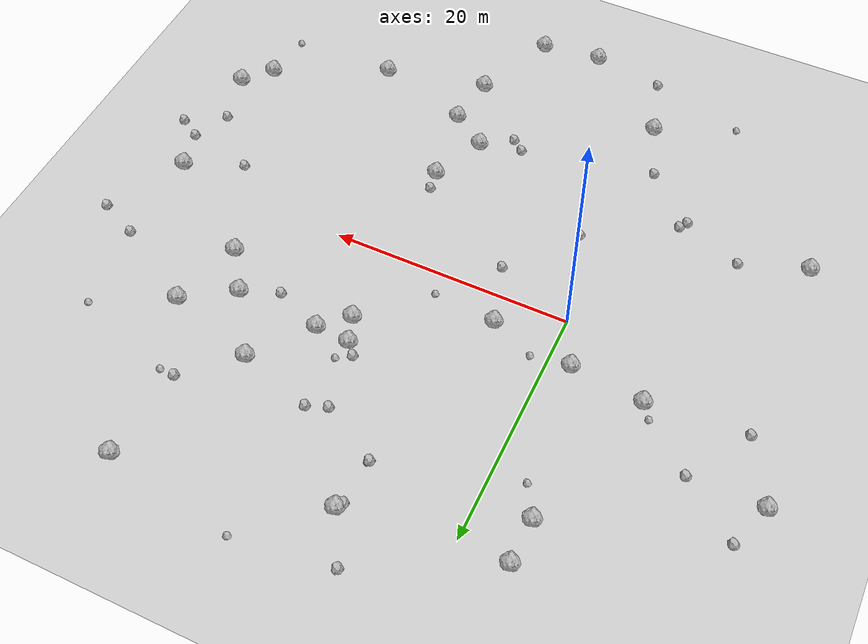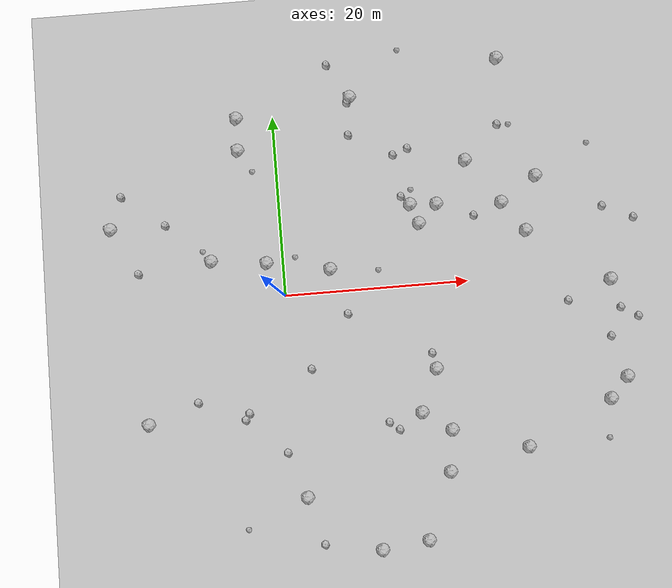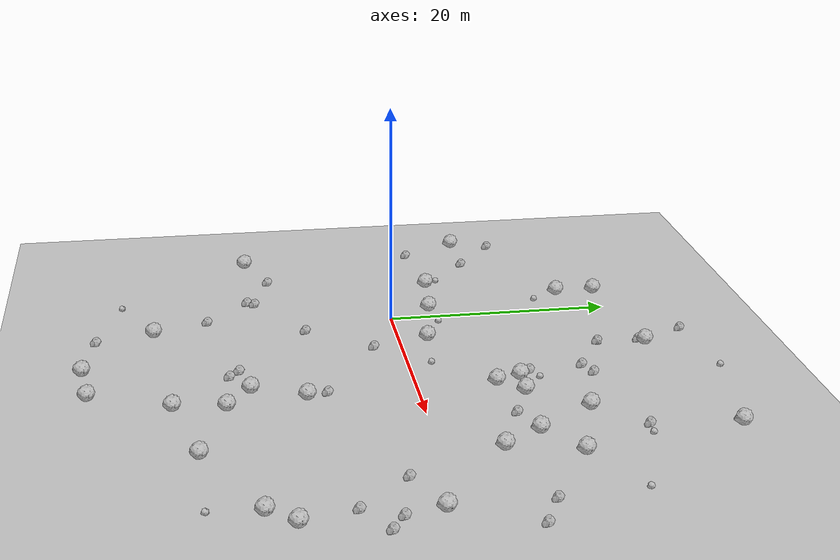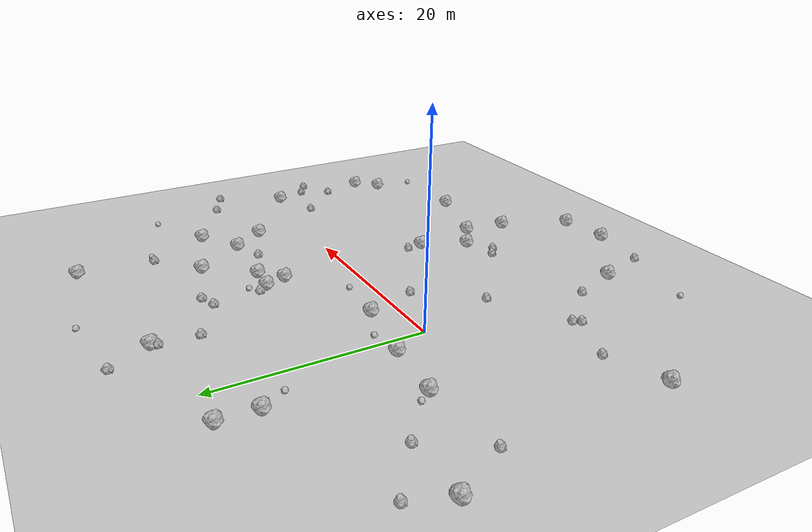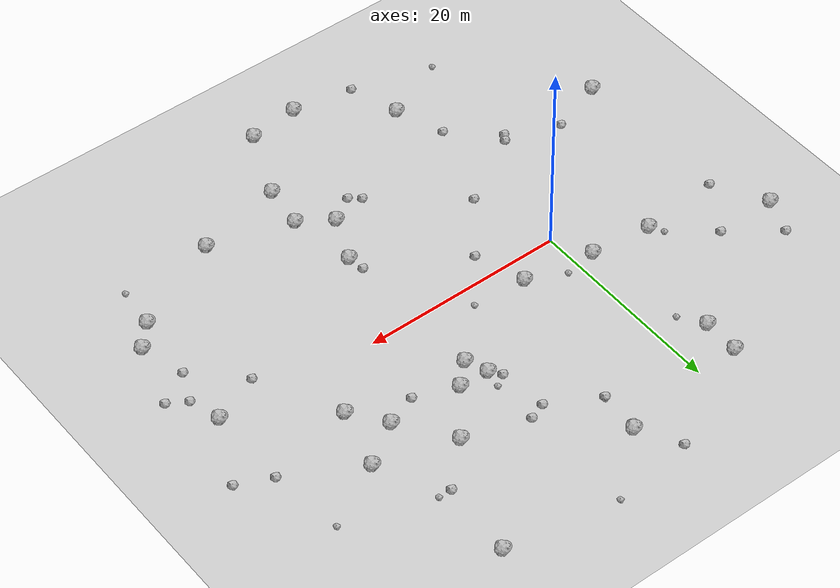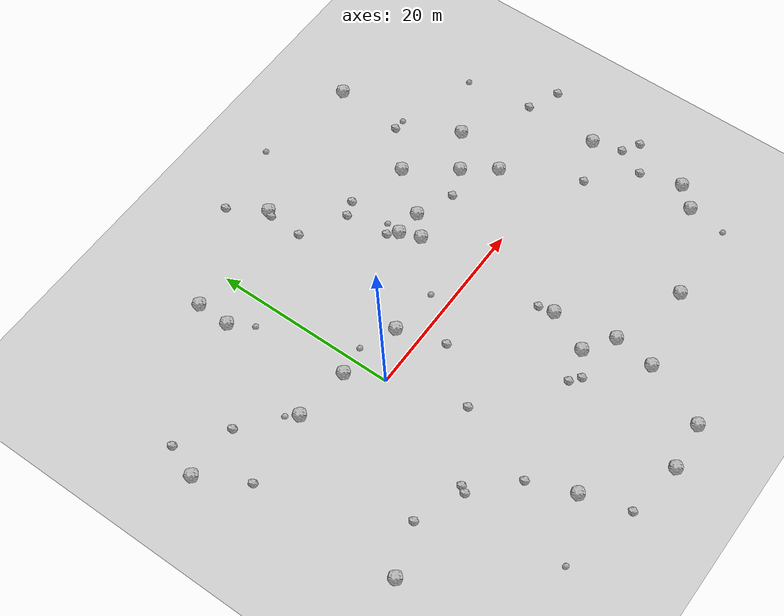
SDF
<sdf version="1.6">
 <world name="default">
  <include><uri>model://custom_ground</uri></include>
  <include><uri>model://sun</uri></include>
  <model name="rock1_0_0">
   <include><uri>model://rock1</uri><pose>24.398046547388958 8.331102305955568 0.5 0 0 0</pose></include>
  </model>
  <model name="rock1_0_1">
   <include><uri>model://rock1</uri><pose>34.09810841004603 -13.936259148995287 0.5 0 0 0</pose></include>
  </model>
  <model name="rock1_0_2">
   <include><uri>model://rock1</uri><pose>15.198357829529435 6.747500550757017 0.5 0 0 0</pose></include>
  </model>
  <model name="rock1_0_3">
   <include><uri>model://rock1</uri><pose>-15.56095035758571 -12.66501505706362 0.5 0 0 0</pose></include>
  </model>
  <model name="rock1_0_4">
   <include><uri>model://rock1</uri><pose>25.425156211855622 24.583975993850906 0.5 0 0 0</pose></include>
  </model>
  <model name="rock1_0_5">
   <include><uri>model://rock1</uri><pose>36.107950517978445 -11.725876800390687 0.5 0 0 0</pose></include>
  </model>
  <model name="rock1_0_6">
   <include><uri>model://rock1</uri><pose>8.274360229697567 -27.73855662255845 0.5 0 0 0</pose></include>
  </model>
  <model name="rock1_0_7">
   <include><uri>model://rock1</uri><pose>-4.032806701916421 16.494015629699007 0.5 0 0 0</pose></include>
  </model>
  <model name="rock1_0_8">
   <include><uri>model://rock1</uri><pose>13.274452738488172 -27.146397997913994 0.5 0 0 0</pose></include>
  </model>
  <model name="rock1_0_9">
   <include><uri>model://rock1</uri><pose>35.446819270651226 -1.0865948712470548 0.5 0 0 0</pose></include>
  </model>
  <model name="rock1_0_10">
   <include><uri>model://rock1</uri><pose>26.778924924858977 5.0052008827340515 0.5 0 0 0</pose></include>
  </model>
  <model name="rock1_0_11">
   <include><uri>model://rock1</uri><pose>24.802799261099857 -18.29904144895759 0.5 0 0 0</pose></include>
  </model>
  <model name="rock1_0_12">
   <include><uri>model://rock1</uri><pose>-18.514312107212657 8.81685401557688 0.5 0 0 0</pose></include>
  </model>
  <model name="rock1_0_13">
   <include><uri>model://rock1</uri><pose>8.750869696426566 21.498424355484694 0.5 0 0 0</pose></include>
  </model>
  <model name="rock1_0_14">
   <include><uri>model://rock1</uri><pose>20.867704677126206 13.332006006602477 0.5 0 0 0</pose></include>
  </model>
  <model name="rock1_0_15">
   <include><uri>model://rock1</uri><pose>5.114196946024528 2.52552981307619 0.5 0 0 0</pose></include>
  </model>
  <model name="rock1_0_16">
   <include><uri>model://rock1</uri><pose>15.684478192428422 -9.19805900003714 0.5 0 0 0</pose></include>
  </model>
  <model name="rock1_0_17">
   <include><uri>model://rock1</uri><pose>28.410638610979298 10.97447269910247 0.5 0 0 0</pose></include>
  </model>
  <model name="rock1_0_18">
   <include><uri>model://rock1</uri><pose>-3.945079876574912 20.117027902949445 0.5 0 0 0</pose></include>
  </model>
  <model name="rock1_0_19">
   <include><uri>model://rock1</uri><pose>16.776309272322564 -15.839045252920945 0.5 0 0 0</pose></include>
  </model>
  <model name="rock1_0_20">
   <include><uri>model://rock1</uri><pose>-1.7516750062323752 3.7523604697794752 0.5 0 0 0</pose></include>
  </model>
  <model name="rock1_0_21">
   <include><uri>model://rock1</uri><pose>13.721501846775531 -13.741701766387784 0.5 0 0 0</pose></include>
  </model>
  <model name="rock1_0_22">
   <include><uri>model://rock1</uri><pose>-7.761213293122127 4.4262627833510635 0.5 0 0 0</pose></include>
  </model>
  <model name="rock1_0_23">
   <include><uri>model://rock1</uri><pose>17.278436342714038 8.74608618900924 0.5 0 0 0</pose></include>
  </model>
  <model name="rock1_0_24">
   <include><uri>model://rock1</uri><pose>14.395165227214406 8.926736808135793 0.5 0 0 0</pose></include>
  </model>
  <model name="rock1_0_25">
   <include><uri>model://rock1</uri><pose>16.19458807552317 -20.22665982738291 0.5 0 0 0</pose></include>
  </model>
  <model name="rock1_0_26">
   <include><uri>model://rock1</uri><pose>0.7971871965159281 -21.665091179481884 0.5 0 0 0</pose></include>
  </model>
  <model name="rock2_0_0">
   <include><uri>model://rock2</uri><pose>11.178878192248352 -15.37912908046642 0.3 0 0 0</pose></include>
  </model>
  <model name="rock2_0_1">
   <include><uri>model://rock2</uri><pose>30.639830556980904 -3.046735685341364 0.3 0 0 0</pose></include>
  </model>
  <model name="rock2_0_2">
   <include><uri>model://rock2</uri><pose>10.136467191785655 -14.522756830903994 0.3 0 0 0</pose></include>
  </model>
  <model name="rock2_0_3">
   <include><uri>model://rock2</uri><pose>8.249185496821397 17.254659473181462 0.3 0 0 0</pose></include>
  </model>
  <model name="rock2_0_4">
   <include><uri>model://rock2</uri><pose>-4.778702521419662 -12.331769416668092 0.3 0 0 0</pose></include>
  </model>
  <model name="rock2_0_5">
   <include><uri>model://rock2</uri><pose>-10.193508002677605 -10.752084497466718 0.3 0 0 0</pose></include>
  </model>
  <model name="rock2_0_6">
   <include><uri>model://rock2</uri><pose>15.367837340119216 -7.502160361509532 0.3 0 0 0</pose></include>
  </model>
  <model name="rock2_0_7">
   <include><uri>model://rock2</uri><pose>14.63651596450704 15.238386888199301 0.3 0 0 0</pose></include>
  </model>
  <model name="rock2_0_8">
   <include><uri>model://rock2</uri><pose>24.77738985595908 17.105526170896844 0.3 0 0 0</pose></include>
  </model>
  <model name="rock2_0_9">
   <include><uri>model://rock2</uri><pose>-12.578634283599095 8.82040023669554 0.3 0 0 0</pose></include>
  </model>
  <model name="rock2_0_10">
   <include><uri>model://rock2</uri><pose>13.486382331689114 9.902483884202816 0.3 0 0 0</pose></include>
  </model>
  <model name="rock2_0_11">
   <include><uri>model://rock2</uri><pose>-17.236688325267856 12.374861736572115 0.3 0 0 0</pose></include>
  </model>
  <model name="rock2_0_12">
   <include><uri>model://rock2</uri><pose>38.69159056301164 5.499459039122698 0.3 0 0 0</pose></include>
  </model>
  <model name="rock2_0_13">
   <include><uri>model://rock2</uri><pose>8.37568412748929 20.959492686635613 0.3 0 0 0</pose></include>
  </model>
  <model name="rock2_0_14">
   <include><uri>model://rock2</uri><pose>-15.803137053449593 3.6973928092877486 0.3 0 0 0</pose></include>
  </model>
  <model name="rock2_0_15">
   <include><uri>model://rock2</uri><pose>2.234203257838331 -8.154769849935693 0.3 0 0 0</pose></include>
  </model>
  <model name="rock2_0_16">
   <include><uri>model://rock2</uri><pose>2.242073311798947 -26.747611867422233 0.3 0 0 0</pose></include>
  </model>
  <model name="rock2_0_17">
   <include><uri>model://rock2</uri><pose>38.06090431995921 -5.347931985063955 0.3 0 0 0</pose></include>
  </model>
  <model name="rock2_0_18">
   <include><uri>model://rock2</uri><pose>34.8891109810859 -7.290418207069479 0.3 0 0 0</pose></include>
  </model>
  <model name="rock2_0_19">
   <include><uri>model://rock2</uri><pose>-5.225156711143411 -13.013579734960018 0.3 0 0 0</pose></include>
  </model>
  <model name="rock2_0_20">
   <include><uri>model://rock2</uri><pose>6.445825033314872 25.417224663213304 0.3 0 0 0</pose></include>
  </model>
  <model name="rock2_0_21">
   <include><uri>model://rock2</uri><pose>21.257120593473708 7.150197509861648 0.3 0 0 0</pose></include>
  </model>
  <model name="rock2_0_22">
   <include><uri>model://rock2</uri><pose>6.629539646432679 -2.512016218472308 0.3 0 0 0</pose></include>
  </model>
  <model name="rock2_0_23">
   <include><uri>model://rock2</uri><pose>36.25482624327795 -4.244649269553452 0.3 0 0 0</pose></include>
  </model>
  <model name="rock2_0_24">
   <include><uri>model://rock2</uri><pose>35.391362866451544 7.016223779015192 0.3 0 0 0</pose></include>
  </model>
  <model name="rock2_0_25">
   <include><uri>model://rock2</uri><pose>12.981730907124579 14.620663578524656 0.3 0 0 0</pose></include>
  </model>
  <model name="rock2_0_26">
   <include><uri>model://rock2</uri><pose>-0.9776848692292788 -16.845700547140527 0.3 0 0 0</pose></include>
  </model>
  <model name="rock3_0_0">
   <include><uri>model://rock3</uri><pose>-8.687392889862277 5.575190473100015 0.2 0 0 0</pose></include>
  </model>
  <model name="rock3_0_1">
   <include><uri>model://rock3</uri><pose>-5.764836693764581 -24.585683461284038 0.2 0 0 0</pose></include>
  </model>
  <model name="rock3_0_2">
   <include><uri>model://rock3</uri><pose>8.321432072955155 17.35052053355117 0.2 0 0 0</pose></include>
  </model>
  <model name="rock3_0_3">
   <include><uri>model://rock3</uri><pose>10.301109729334666 2.0117848441598056 0.2 0 0 0</pose></include>
  </model>
  <model name="rock3_0_4">
   <include><uri>model://rock3</uri><pose>26.021095695911512 17.015493745069385 0.2 0 0 0</pose></include>
  </model>
  <model name="rock3_0_5">
   <include><uri>model://rock3</uri><pose>14.594085232333896 10.567451240670628 0.2 0 0 0</pose></include>
  </model>
  <model name="rock3_0_6">
   <include><uri>model://rock3</uri><pose>33.52405089080246 -18.13960654322137 0.2 0 0 0</pose></include>
  </model>
  <model name="rock3_0_7">
   <include><uri>model://rock3</uri><pose>34.44431216280264 14.215763248225528 0.2 0 0 0</pose></include>
  </model>
  <model name="rock3_0_8">
   <include><uri>model://rock3</uri><pose>1.3514156436997702 4.147095424777973 0.2 0 0 0</pose></include>
  </model>
  <model name="rock3_0_9">
   <include><uri>model://rock3</uri><pose>-2.662904272789987 14.031891588713734 0.2 0 0 0</pose></include>
  </model>
  <model name="rock3_0_10">
   <include><uri>model://rock3</uri><pose>14.443927133557274 26.491308725689976 0.2 0 0 0</pose></include>
  </model>
 </world>
</sdf>
